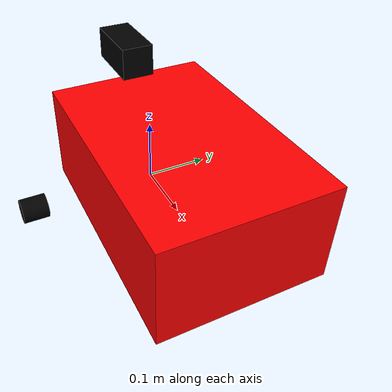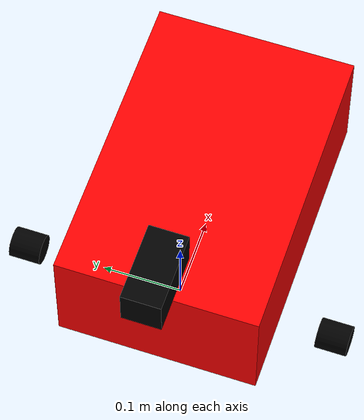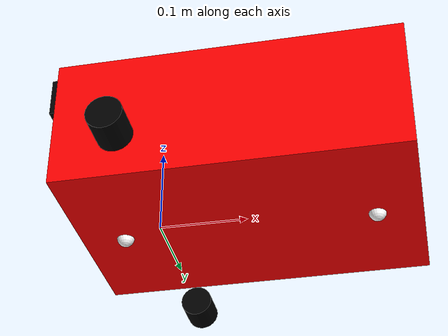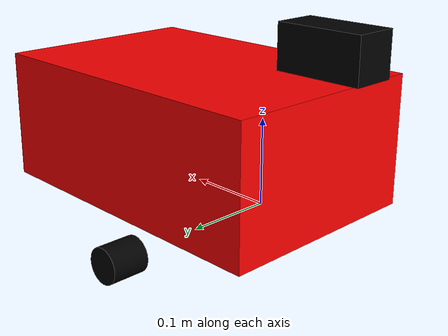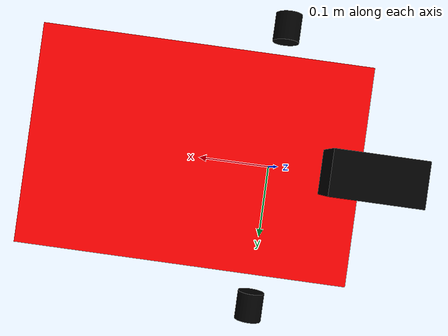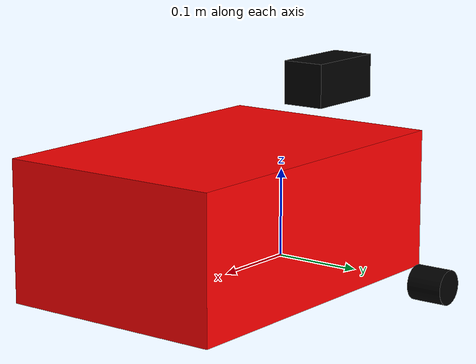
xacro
<?xml version="1.0"?>
<!-- Basic differential drive mobile base -->
<robot xmlns:xacro="http://www.ros.org/wiki/xacro" name="diffdrive_robot">
  <xacro:arg name="prefix" default="" />

  <xacro:include filename="$(find awo_control)/urdf/diffbot_description.xacro" />
  <xacro:include filename="$(find awo_control)/urdf/inertial_macros.xacro"/>
  <xacro:include filename="$(find awo_control)/urdf/lidar.xacro"/>
  <xacro:include filename="$(find awo_control)/urdf/camera.xacro"/>

  <!-- Import diffbot ros2_control description -->
  <xacro:include filename="$(find awo_control)/ros2_control/diffbot.ros2_control.xacro" />

  <xacro:diffbot prefix="$(arg prefix)" />

  <xacro:diffbot_ros2_control
    name="DiffBot" prefix="$(arg prefix)" />

</robot>

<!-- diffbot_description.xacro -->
<robot name ="awo" xmlns:xacro="http://www.ros.org/wiki/xacro" >

    <xacro:include filename="inertial_macros.xacro"/>

    <xacro:macro name="diffbot" params="prefix">
    <xacro:property name="chassis_length" value="0.385"/>
    <xacro:property name="chassis_width" value="0.255"/>
    <xacro:property name="chassis_height" value="0.155"/>
    <xacro:property name="chassis_mass" value="1.0"/>
    <xacro:property name="wheel_radius" value="0.019"/>
    <xacro:property name="wheel_thickness" value="0.04"/>
    <xacro:property name="wheel_mass" value="0.05"/>
    <xacro:property name="wheel_offset_x" value="0.09"/>
    <xacro:property name="wheel_offset_y" value="0.2"/>
    <xacro:property name="wheel_offset_z" value="0.01"/>
    <xacro:property name="caster_wheel_radius" value="0.01"/>
    <xacro:property name="caster_wheel_mass" value="0.01"/>
    <xacro:property name="caster_wheel_offset_x" value="0.05"/>
    <xacro:property name="caster_wheel_offset_z" value="${wheel_offset_z - wheel_radius + caster_wheel_radius}"/>

    <material name="white">
        <color rgba="1 1 1 1" />
    </material>

    <material name="orange">
        <color rgba="1 0.3 0.1 1"/>
    </material>

    <material name="blue">
        <color rgba="0.2 0.2 1 1"/>
    </material>

    <material name="black">
        <color rgba="0 0 0 1"/>
    </material>

    <material name="red">
        <color rgba="1 0 0 1"/>
    </material>

    <!-- BASE LINK -->

    <link name="base_link">

    </link>

    <!-- BASE_FOOTPRINT LINK -->

    <joint name="base_footprint_joint" type="fixed">
        <parent link="base_link"/>
        <child link="base_footprint"/>
        <origin xyz="0 0 0" rpy="0 0 0"/>
    </joint>

    <link name="base_footprint">
    </link>

    <!-- CHASSIS LINK -->

    <joint name="chassis_joint" type="fixed">
        <parent link="base_link"/>
        <child link="chassis"/>
        <origin xyz="${-wheel_offset_x} 0 ${-wheel_offset_z}"/>
    </joint>

    <link name="chassis">
        <visual>
            <origin xyz="${chassis_length/2} 0 ${chassis_height/2}"/>
            <geometry>
                <box size="${chassis_length} ${chassis_width} ${chassis_height}"/>
            </geometry>
            <material name="red"/>
        </visual>
        <collision>
            <origin xyz="${chassis_length/2} 0 ${chassis_height/2}"/>
            <geometry>
                <box size="${chassis_length} ${chassis_width} ${chassis_height}"/>
            </geometry>
        </collision>
        <xacro:inertial_box mass="0.5" x="${chassis_length}" y="${chassis_width}" z="${chassis_height}">
            <origin xyz="${chassis_length/2} 0 ${chassis_height/2}" rpy="0 0 0"/>
        </xacro:inertial_box>
    </link>

    <!-- LEFT WHEEL LINK -->

    <joint name="left_wheel_joint" type="continuous">
        <parent link="base_link"/>
        <child link="left_wheel"/>
        <origin xyz="0 ${wheel_offset_y} 0" rpy="-${pi/2} 0 0" />
        <axis xyz="0 0 1"/>
    </joint>

    <link name="left_wheel">
        <visual>
            <geometry>
                <cylinder radius="${wheel_radius}" length="${wheel_thickness}"/>
            </geometry>
            <material name="black"/>
        </visual>
        <collision>
            <geometry>
                <cylinder radius="${wheel_radius}" length="${wheel_thickness}"/>
            </geometry>
        </collision>
        <xacro:inertial_cylinder mass="${wheel_mass}" length="${wheel_thickness}" radius="${wheel_radius}">
            <origin xyz="0 0 0" rpy="0 0 0"/>
        </xacro:inertial_cylinder>
    </link>

    <!-- RIGHT WHEEL LINK -->

    <joint name="right_wheel_joint" type="continuous">
        <parent link="base_link"/>
        <child link="right_wheel"/>
        <origin xyz="0 ${-wheel_offset_y} 0" rpy="${pi/2} 0 0" />
        <axis xyz="0 0 -1"/>
    </joint>

    <link name="right_wheel">
        <visual>
            <geometry>
                <cylinder radius="${wheel_radius}" length="${wheel_thickness}"/>
            </geometry>
            <material name="black"/>
        </visual>
        <collision>
            <geometry>
                <sphere radius="${wheel_radius}"/>
            </geometry>
        </collision>
        <xacro:inertial_cylinder mass="${wheel_mass}" length="${wheel_thickness}" radius="${wheel_radius}">
            <origin xyz="0 0 0" rpy="0 0 0"/>
        </xacro:inertial_cylinder>
    </link>

    <!-- BACK CASTER WHEEL LINK -->

    <joint name="back_caster_wheel_joint" type="fixed">
        <parent link="chassis"/>
        <child link="back_caster_wheel"/>
        <origin xyz="${caster_wheel_offset_x} 0 ${caster_wheel_offset_z}"/>
    </joint>

    <link name="back_caster_wheel">
        <visual>
            <geometry>
                <sphere radius="${caster_wheel_radius}"/>
            </geometry>
            <material name="white"/>
        </visual>
        <collision>
            <geometry>
                <sphere radius="${caster_wheel_radius}"/>
            </geometry>
        </collision>
        <xacro:inertial_sphere mass="${caster_wheel_mass}" radius="${caster_wheel_radius}">
            <origin xyz="0 0 0" rpy="0 0 0"/>
        </xacro:inertial_sphere>
    </link>

    <joint name="front_caster_wheel_joint" type="fixed">
        <parent link="chassis"/>
        <child link="front_caster_wheel"/>
        <origin xyz="${chassis_length-caster_wheel_offset_x} 0 ${caster_wheel_offset_z}"/>
    </joint>

    <link name="front_caster_wheel">
        <visual>
            <geometry>
                <sphere radius="${caster_wheel_radius}"/>
            </geometry>
            <material name="white"/>
        </visual>
        <collision>
            <geometry>
                <sphere radius="${caster_wheel_radius}"/>
            </geometry>
        </collision>
        <xacro:inertial_sphere mass="${caster_wheel_mass}" radius="${caster_wheel_radius}">
            <origin xyz="0 0 0" rpy="0 0 0"/>
        </xacro:inertial_sphere>
    </link>
  </xacro:macro>

</robot>

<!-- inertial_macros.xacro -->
<robot xmlns:xacro="http://www.ros.org/wiki/xacro" name = "macros" >

    <!-- Specify some standard inertial calculations https://en.wikipedia.org/wiki/List_of_moments_of_inertia -->
    <!-- These make use of xacro's mathematical functionality -->

    <xacro:macro name="inertial_sphere" params="mass radius *origin">
        <inertial>
            <xacro:insert_block name="origin"/>
            <mass value="${mass}" />
            <inertia ixx="${(2/5) * mass * (radius*radius)}" ixy="0.0" ixz="0.0"
                    iyy="${(2/5) * mass * (radius*radius)}" iyz="0.0"
                    izz="${(2/5) * mass * (radius*radius)}" />
        </inertial>
    </xacro:macro>

    <xacro:macro name="inertial_box" params="mass x y z *origin">
        <inertial>
            <xacro:insert_block name="origin"/>
            <mass value="${mass}" />
            <inertia ixx="${(1/12) * mass * (y*y+z*z)}" ixy="0.0" ixz="0.0"
                    iyy="${(1/12) * mass * (x*x+z*z)}" iyz="0.0"
                    izz="${(1/12) * mass * (x*x+y*y)}" />
        </inertial>
    </xacro:macro>

    <xacro:macro name="inertial_cylinder" params="mass length radius *origin">
        <inertial>
            <xacro:insert_block name="origin"/>
            <mass value="${mass}" />
            <inertia ixx="${(1/12) * mass * (3*radius*radius + length*length)}" ixy="0.0" ixz="0.0"
                    iyy="${(1/12) * mass * (3*radius*radius + length*length)}" iyz="0.0"
                    izz="${(1/2) * mass * (radius*radius)}" />
        </inertial>
    </xacro:macro>

</robot>

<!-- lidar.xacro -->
<robot xmlns:xacro="http://www.ros.org/wiki/xacro" name="diffdrive_robot">

    <joint name="laser_joint" type="fixed">
        <parent link="chassis"/>
        <child link="laser_frame"/>
        <origin xyz="0.15 0 0.125" rpy="0 0 0"/>
    </joint>

    <link name="laser_frame">
        <visual>
            <geometry>
                <cylinder radius="0.03" length="0.04"/>
            </geometry>
            <material name="black"/>
        </visual>
        <visual>
            <origin xyz="0 0 -0.05"/>
            <geometry>
                <cylinder radius="0.01" length="0.1"/>
            </geometry>
            <material name="black"/>
        </visual>
        <collision>
            <geometry>
                <cylinder radius="0.05" length="0.04"/>
            </geometry>
        </collision>
        <xacro:inertial_cylinder mass="0.1" length="0.04" radius="0.05">
            <origin xyz="0 0 0" rpy="0 0 0"/>
        </xacro:inertial_cylinder>
    </link>

</robot>

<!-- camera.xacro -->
<robot xmlns:xacro="http://www.ros.org/wiki/xacro" name="diffdrive_robot">
  <!-- First joint (Z-axis rotation) -->
    <joint name="z_joint" type="revolute">
    <parent link="chassis"/>
    <child link="z_link"/>
    <origin xyz="0 0 0.1" rpy="0 0 0"/>
    <axis xyz="0 0 1"/>
    <limit lower="-1.5708" upper="1.5708" effort="5.0" velocity="1.0"/>
    <dynamics damping="0.1" friction="0.1"/>
  </joint>

  <link name="z_link">
    <inertial>
      <mass value="0.5" />
      <origin xyz="0 0 0" />
      <inertia ixx="0.5" ixy="0.0" ixz="0.0" iyy="0.5" iyz="0.0" izz="0.5" />
    </inertial>
  </link>

  <!-- Second Axis (Pitch) -->
  <joint name="y_joint" type="revolute">
    <parent link="z_link"/>
    <child link="y_link"/>
    <origin xyz="0 0 0.05" rpy="0 0 0"/>
    <axis xyz="0 1 0"/>
    <limit lower="-1.5708" upper="1.5708" effort="5.0" velocity="1.0"/>
    <dynamics damping="0.1" friction="0.1"/>
  </joint>

  <link name="y_link">
    <inertial>
      <mass value="0.5" />
      <origin xyz="0 0 0" />
      <inertia ixx="0.5" ixy="0.0" ixz="0.0" iyy="0.5" iyz="0.0" izz="0.5" />
    </inertial>
  </link>

  <!-- Third Axis (Roll) -->
  <joint name="x_joint" type="revolute">
    <parent link="y_link"/>
    <child link="camera_link"/>
    <origin xyz="0 0 0.05" rpy="0 0 0"/>
    <axis xyz="1 0 0"/>
    <limit lower="-1.5708" upper="1.5708" effort="5.0" velocity="1.0"/>
    <dynamics damping="0.1" friction="0.1"/>
  </joint>

  <link name="camera_link">
    <inertial>
      <mass value="0.5" />
      <origin xyz="0 0 0" />
      <inertia ixx="0.5" ixy="0.0" ixz="0.0" iyy="0.5" iyz="0.0" izz="0.5" />
    </inertial>
    <visual>
      <geometry>
        <box size="0.1 0.05 0.05"/>
      </geometry>
      <origin xyz="0 0 0" rpy="0 0 0"/>
      <material name="black"/>
    </visual>
  </link>

</robot>
